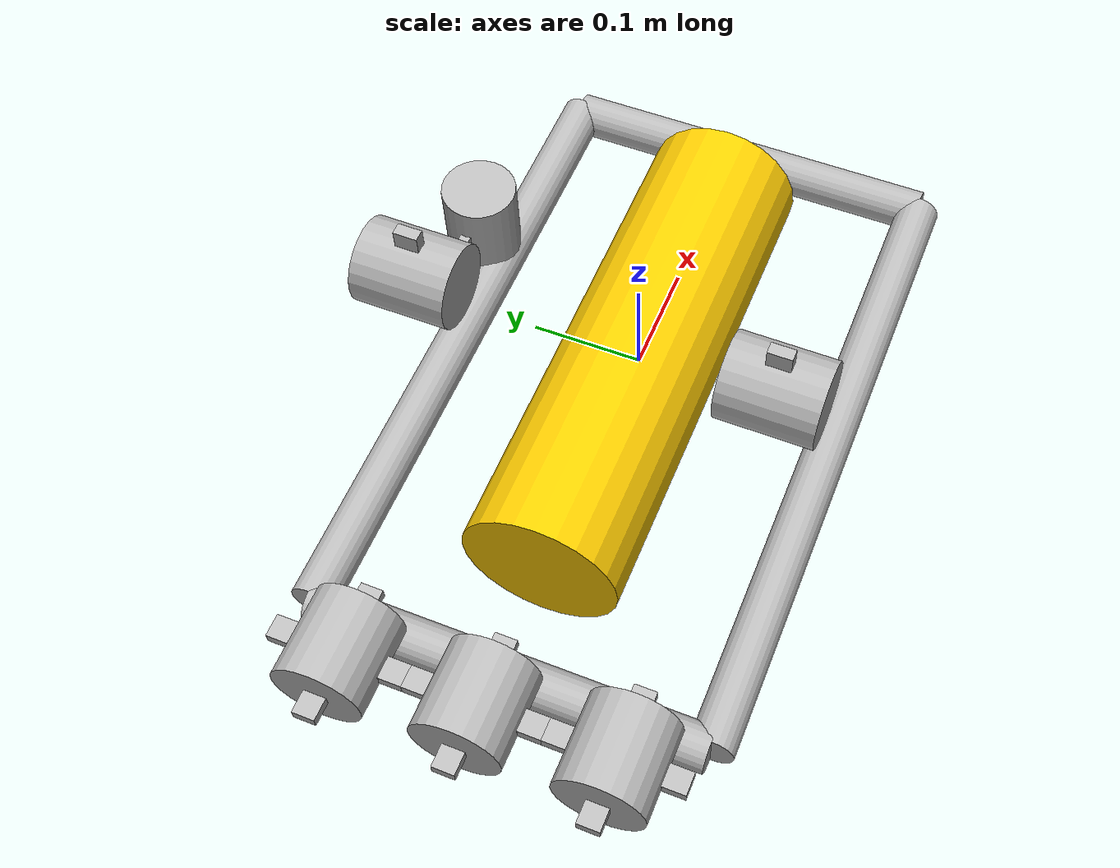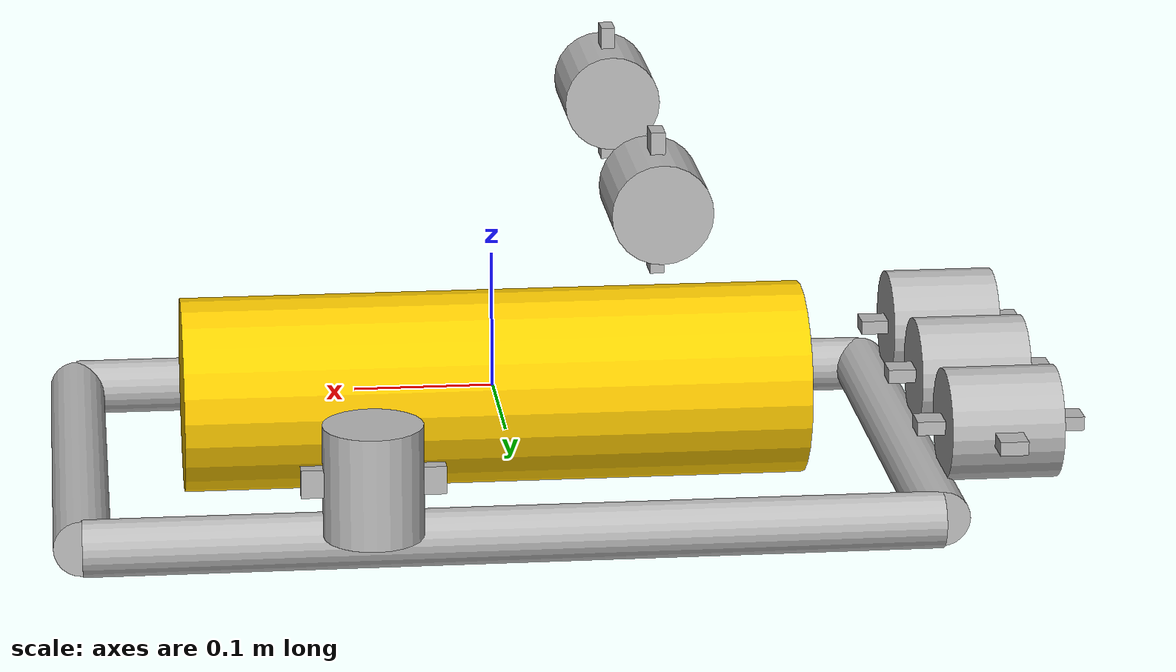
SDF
<sdf version="1.6">
<model name="babyrov">

  <static>false</static>

  <link name="base_link">

    <!-- Physics -->
    <inertial>
      <mass>8.5</mass>
      <inertia>
        <ixx>0.1</ixx>
        <iyy>0.1</iyy>
        <izz>0.1</izz>
      </inertia>
    </inertial>

    <velocity_decay>
      <linear>0.4</linear>
      <angular>0.4</angular>
    </velocity_decay>

    <buoyancy>
      <fluid_density>1025</fluid_density>
      <volume>0.01</volume>
    </buoyancy>

    <!-- Physics collision -->
    <collision name="collision">
      <geometry>
        <box>
          <size>0.35 0.35 0.25</size>
        </box>
      </geometry>
    </collision>

    <!-- Camera -->
    <sensor name="rov_camera" type="camera">
      <pose>0.45 0 0.12 0 0 0</pose>
      <always_on>true</always_on>
      <update_rate>30</update_rate>
      <visualize>true</visualize>

      <camera>
        <horizontal_fov>1.396</horizontal_fov>
        <image>
          <width>640</width>
          <height>480</height>
          <format>R8G8B8</format>
        </image>
        <clip>
          <near>0.05</near>
          <far>50</far>
        </clip>
      </camera>

      <plugin name="camera_controller" filename="libgazebo_ros_camera.so">
        <ros>
          <namespace>/babyrov</namespace>
        </ros>
        <camera_name>rov_camera</camera_name>
        <image_topic_name>image_raw</image_topic_name>
        <camera_info_topic_name>camera_info</camera_info_topic_name>
        <frame_name>camera_link</frame_name>
      </plugin>
    </sensor>
    <!-- HULL -->
    <visual name="hull">
      <pose>0 0 0 0 1.57 0</pose>
      <geometry>
        <cylinder>
          <radius>0.07</radius>
          <length>0.45</length>
        </cylinder>
      </geometry>
      <material>
        <ambient>1 0.8 0 1</ambient>
      </material>
    </visual>

    <!-- FRAME -->
    <visual name="frame_left">
      <pose>0 -0.18 -0.05 0 1.57 0</pose>
      <geometry>
        <cylinder>
          <radius>0.02</radius>
          <length>0.6</length>
        </cylinder>
      </geometry>
    </visual>

    <visual name="frame_right">
      <pose>0 0.18 -0.05 0 1.57 0</pose>
      <geometry>
        <cylinder>
          <radius>0.02</radius>
          <length>0.6</length>
        </cylinder>
      </geometry>
    </visual>

    <visual name="frame_front">
      <pose>0.3 0 -0.05 1.57 0 0</pose>
      <geometry>
        <cylinder>
          <radius>0.02</radius>
          <length>0.36</length>
        </cylinder>
      </geometry>
    </visual>

    <visual name="frame_back">
      <pose>-0.3 0 -0.05 1.57 0 0</pose>
      <geometry>
        <cylinder>
          <radius>0.02</radius>
          <length>0.36</length>
        </cylinder>
      </geometry>
    </visual>

    <!-- THRUSTER: REAR LEFT -->
    <visual name="thruster_rear_left">
      <pose>-0.35 -0.12 0 0 1.57 0</pose>
      <geometry>
        <cylinder>
          <radius>0.04</radius>
          <length>0.08</length>
        </cylinder>
      </geometry>
    </visual>

    <visual name="prop_rear_left_1">
      <pose>-0.35 -0.12 0 0 1.57 0</pose>
      <geometry>
        <box>
          <size>0.01 0.12 0.02</size>
        </box>
      </geometry>
    </visual>

    <visual name="prop_rear_left_2">
      <pose>-0.35 -0.12 0 0 1.57 1.57</pose>
      <geometry>
        <box>
          <size>0.01 0.12 0.02</size>
        </box>
      </geometry>
    </visual>

    <!-- THRUSTER: REAR RIGHT -->
    <visual name="thruster_rear_right">
      <pose>-0.35 0.12 0 0 1.57 0</pose>
      <geometry>
        <cylinder>
          <radius>0.04</radius>
          <length>0.08</length>
        </cylinder>
      </geometry>
    </visual>

    <visual name="prop_rear_right_1">
      <pose>-0.35 0.12 0 0 1.57 0</pose>
      <geometry>
        <box>
          <size>0.01 0.12 0.02</size>
        </box>
      </geometry>
    </visual>

    <visual name="prop_rear_right_2">
      <pose>-0.35 0.12 0 0 1.57 1.57</pose>
      <geometry>
        <box>
          <size>0.01 0.12 0.02</size>
        </box>
      </geometry>
    </visual>

    <!-- THRUSTER: REAR CENTER -->
    <visual name="thruster_rear_center">
      <pose>-0.35 0 0 0 1.57 0</pose>
      <geometry>
        <cylinder>
          <radius>0.04</radius>
          <length>0.08</length>
        </cylinder>
      </geometry>
    </visual>

    <visual name="prop_rear_center_1">
      <pose>-0.35 0 0 0 1.57 0</pose>
      <geometry>
        <box>
          <size>0.01 0.12 0.02</size>
        </box>
      </geometry>
    </visual>

    <visual name="prop_rear_center_2">
      <pose>-0.35 0 0 0 1.57 1.57</pose>
      <geometry>
        <box>
          <size>0.01 0.12 0.02</size>
        </box>
      </geometry>
    </visual>

    <!-- TOP THRUSTERS -->
    <visual name="thruster_top_left">
      <pose>-0.1 -0.15 0.18 1.57 0 0</pose>
      <geometry>
        <cylinder>
          <radius>0.035</radius>
          <length>0.08</length>
        </cylinder>
      </geometry>
    </visual>

    <visual name="prop_top_left">
      <pose>-0.1 -0.15 0.18 1.57 0 0</pose>
      <geometry>
        <box>
          <size>0.01 0.1 0.02</size>
        </box>
      </geometry>
    </visual>

    <visual name="thruster_top_right">
      <pose>-0.1 0.15 0.18 1.57 0 0</pose>
      <geometry>
        <cylinder>
          <radius>0.035</radius>
          <length>0.08</length>
        </cylinder>
      </geometry>
    </visual>

    <visual name="prop_top_right">
      <pose>-0.1 0.15 0.18 1.57 0 0</pose>
      <geometry>
        <box>
          <size>0.01 0.1 0.02</size>
        </box>
      </geometry>
    </visual>

    <!-- SIDE THRUSTER -->
    <visual name="thruster_side">
      <pose>0.1 0.2 0 0 0 1.57</pose>
      <geometry>
        <cylinder>
          <radius>0.035</radius>
          <length>0.08</length>
        </cylinder>
      </geometry>
    </visual>

    <visual name="prop_side">
      <pose>0.1 0.2 0 0 0 1.57</pose>
      <geometry>
        <box>
          <size>0.01 0.1 0.02</size>
        </box>
      </geometry>
    </visual>

  </link>

  <!-- Motion -->
  <plugin name="planar_move" filename="libgazebo_ros_planar_move.so">
    <ros>
      <namespace>/babyrov</namespace>
    </ros>

    <body_name>base_link</body_name>
    <cmd_vel_topic>cmd_vel</cmd_vel_topic>

    <max_linear_velocity>2.0</max_linear_velocity>
    <max_angular_velocity>1.5</max_angular_velocity>
  </plugin>

</model>
</sdf>
